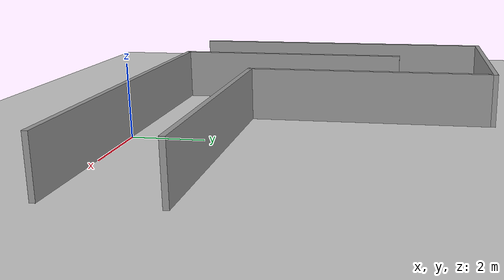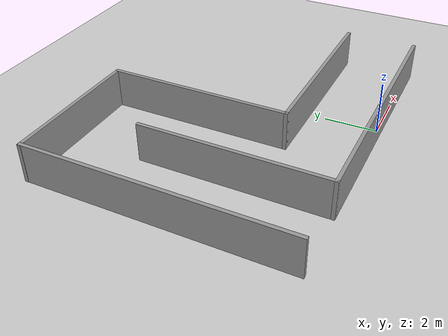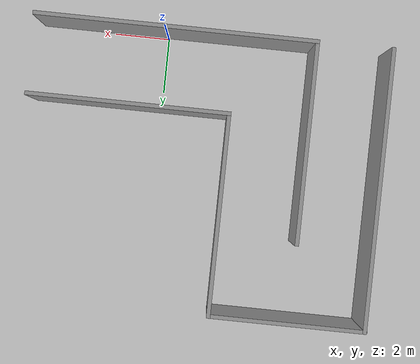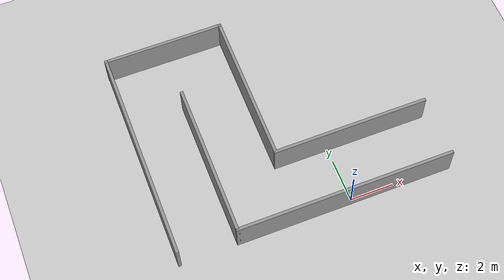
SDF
<sdf version="1.6">
 <world name="default">
  <light name="sun" type="directional">
   <pose>0 0 10 0 -0 0</pose>
   <diffuse>0.8 0.8 0.8 1</diffuse>
   <specular>0.2 0.2 0.2 1</specular>
   <attenuation>
    <range>1000</range>
    <constant>0.9</constant>
    <linear>0.01</linear>
    <quadratic>0.001</quadratic>
   </attenuation>
   <direction>-0.5 0.1 -0.9</direction>
  </light>
  <model name="ground_plane">
   <static>1</static>
   <link name="link">
    <collision name="collision">
     <geometry><plane><normal>0 0 1</normal><size>100 100</size></plane></geometry>
     <surface>
      <contact><collide_bitmask>65535</collide_bitmask></contact>
      <friction><ode><mu>100</mu><mu2>50</mu2></ode></friction>
     </surface>
    </collision>
    <visual name="visual">
     <cast_shadows>0</cast_shadows>
     <geometry><plane><normal>0 0 1</normal><size>100 100</size></plane></geometry>
     <material>
      <script><uri>file://media/materials/scripts/gazebo.material</uri><name>Gazebo/Grey</name></script>
     </material>
    </visual>
   </link>
  </model>
  <gravity>0 0 -9.8</gravity>
  <magnetic_field>6e-06 2.3e-05 -4.2e-05</magnetic_field>
  <atmosphere type="adiabatic"/>
  <physics name="default_physics" default="0" type="ode">
   <max_step_size>0.001</max_step_size>
   <real_time_factor>1</real_time_factor>
   <real_time_update_rate>1000</real_time_update_rate>
  </physics>
  <scene><ambient>0.4 0.4 0.4 1</ambient><background>0.7 0.7 0.7 1</background><shadows>1</shadows></scene>
  <spherical_coordinates>
   <surface_model>EARTH_WGS84</surface_model>
   <latitude_deg>0</latitude_deg>
   <longitude_deg>0</longitude_deg>
   <elevation>0</elevation>
   <heading_deg>0</heading_deg>
  </spherical_coordinates>
  <model name="wall_env">
   <link name="link">
    <inertial>
     <mass>1</mass>
     <inertia>
      <ixx>0.166667</ixx>
      <ixy>0</ixy>
      <ixz>0</ixz>
      <iyy>0.166667</iyy>
      <iyz>0</iyz>
      <izz>0.166667</izz>
     </inertia>
    </inertial>
    <visual name="visual">
     <geometry><box><size>10 0.14 2</size></box></geometry>
     <material>
      <script><name>Gazebo/Grey</name><uri>file://media/materials/scripts/gazebo.material</uri></script>
      <shader type="pixel"><normal_map>__default__</normal_map></shader>
      <ambient>0.3 0.3 0.3 1</ambient>
      <diffuse>0.7 0.7 0.7 1</diffuse>
      <specular>0.01 0.01 0.01 1</specular>
      <emissive>0 0 0 1</emissive>
     </material>
    </visual>
    <collision name="collision">
     <geometry><box><size>10 0.14 2</size></box></geometry>
     <surface>
      <friction>
       <ode><mu>1</mu><mu2>1</mu2><fdir1>0 0 0</fdir1><slip1>0</slip1><slip2>0</slip2></ode>
       <torsional>
        <coefficient>1</coefficient>
        <patch_radius>0</patch_radius>
        <surface_radius>0</surface_radius>
        <use_patch_radius>1</use_patch_radius>
        <ode><slip>0</slip></ode>
       </torsional>
      </friction>
      <bounce><restitution_coefficient>0</restitution_coefficient><threshold>1e+06</threshold></bounce>
      <contact>
       <collide_without_contact>0</collide_without_contact>
       <collide_without_contact_bitmask>1</collide_without_contact_bitmask>
       <collide_bitmask>1</collide_bitmask>
       <ode>
        <soft_cfm>0</soft_cfm>
        <soft_erp>0.2</soft_erp>
        <kp>1e+13</kp>
        <kd>1</kd>
        <max_vel>0.01</max_vel>
        <min_depth>0</min_depth>
       </ode>
       <bullet>
        <split_impulse>1</split_impulse>
        <split_impulse_penetration_threshold>-0.01</split_impulse_penetration_threshold>
        <soft_cfm>0</soft_cfm>
        <soft_erp>0.2</soft_erp>
        <kp>1e+13</kp>
        <kd>1</kd>
       </bullet>
      </contact>
     </surface>
    </collision>
   </link>
   <link name="link_clone">
    <pose>1.4 2.8 0 0 -0 0</pose>
    <inertial>
     <mass>1</mass>
     <inertia>
      <ixx>0.166667</ixx>
      <ixy>0</ixy>
      <ixz>0</ixz>
      <iyy>0.166667</iyy>
      <iyz>0</iyz>
      <izz>0.166667</izz>
     </inertia>
    </inertial>
    <visual name="visual">
     <geometry><box><size>7.2 0.14 2</size></box></geometry>
     <material>
      <script><name>Gazebo/Grey</name><uri>file://media/materials/scripts/gazebo.material</uri></script>
      <shader type="pixel"><normal_map>__default__</normal_map></shader>
      <ambient>0.3 0.3 0.3 1</ambient>
      <diffuse>0.7 0.7 0.7 1</diffuse>
      <specular>0.01 0.01 0.01 1</specular>
      <emissive>0 0 0 1</emissive>
     </material>
    </visual>
    <collision name="collision">
     <geometry><box><size>7.2 0.14 2</size></box></geometry>
     <surface>
      <friction>
       <ode><mu>1</mu><mu2>1</mu2><fdir1>0 0 0</fdir1><slip1>0</slip1><slip2>0</slip2></ode>
       <torsional>
        <coefficient>1</coefficient>
        <patch_radius>0</patch_radius>
        <surface_radius>0</surface_radius>
        <use_patch_radius>1</use_patch_radius>
        <ode><slip>0</slip></ode>
       </torsional>
      </friction>
      <bounce><restitution_coefficient>0</restitution_coefficient><threshold>1e+06</threshold></bounce>
      <contact>
       <collide_without_contact>0</collide_without_contact>
       <collide_without_contact_bitmask>1</collide_without_contact_bitmask>
       <collide_bitmask>1</collide_bitmask>
       <ode>
        <soft_cfm>0</soft_cfm>
        <soft_erp>0.2</soft_erp>
        <kp>1e+13</kp>
        <kd>1</kd>
        <max_vel>0.01</max_vel>
        <min_depth>0</min_depth>
       </ode>
       <bullet>
        <split_impulse>1</split_impulse>
        <split_impulse_penetration_threshold>-0.01</split_impulse_penetration_threshold>
        <soft_cfm>0</soft_cfm>
        <soft_erp>0.2</soft_erp>
        <kp>1e+13</kp>
        <kd>1</kd>
       </bullet>
      </contact>
     </surface>
    </collision>
   </link>
   <link name="link_clone_0">
    <pose>-7.58028 4.93005 0 0 -0 0</pose>
    <inertial>
     <mass>1</mass>
     <inertia>
      <ixx>0.166667</ixx>
      <ixy>0</ixy>
      <ixz>0</ixz>
      <iyy>0.166667</iyy>
      <iyz>0</iyz>
      <izz>0.166667</izz>
     </inertia>
    </inertial>
    <visual name="visual">
     <geometry><box><size>10 0.14 2</size></box></geometry>
     <material>
      <script><name>Gazebo/Grey</name><uri>file://media/materials/scripts/gazebo.material</uri></script>
      <shader type="pixel"><normal_map>__default__</normal_map></shader>
      <ambient>0.3 0.3 0.3 1</ambient>
      <diffuse>0.7 0.7 0.7 1</diffuse>
      <specular>0.01 0.01 0.01 1</specular>
      <emissive>0 0 0 1</emissive>
     </material>
     <pose>0 0 0 0 -0 1.57</pose>
    </visual>
    <collision name="collision">
     <pose>0 0 0 0 -0 1.57</pose>
     <geometry><box><size>10 0.14 2</size></box></geometry>
     <surface>
      <friction>
       <ode><mu>1</mu><mu2>1</mu2><fdir1>0 0 0</fdir1><slip1>0</slip1><slip2>0</slip2></ode>
       <torsional>
        <coefficient>1</coefficient>
        <patch_radius>0</patch_radius>
        <surface_radius>0</surface_radius>
        <use_patch_radius>1</use_patch_radius>
        <ode><slip>0</slip></ode>
       </torsional>
      </friction>
      <bounce><restitution_coefficient>0</restitution_coefficient><threshold>1e+06</threshold></bounce>
      <contact>
       <collide_without_contact>0</collide_without_contact>
       <collide_without_contact_bitmask>1</collide_without_contact_bitmask>
       <collide_bitmask>1</collide_bitmask>
       <ode>
        <soft_cfm>0</soft_cfm>
        <soft_erp>0.2</soft_erp>
        <kp>1e+13</kp>
        <kd>1</kd>
        <max_vel>0.01</max_vel>
        <min_depth>0</min_depth>
       </ode>
       <bullet>
        <split_impulse>1</split_impulse>
        <split_impulse_penetration_threshold>-0.01</split_impulse_penetration_threshold>
        <soft_cfm>0</soft_cfm>
        <soft_erp>0.2</soft_erp>
        <kp>1e+13</kp>
        <kd>1</kd>
       </bullet>
      </contact>
     </surface>
    </collision>
   </link>
   <link name="link_clone_clone">
    <pose>-2.12713 6.33005 0 0 -0 0</pose>
    <inertial>
     <mass>1</mass>
     <inertia>
      <ixx>0.166667</ixx>
      <ixy>0</ixy>
      <ixz>0</ixz>
      <iyy>0.166667</iyy>
      <iyz>0</iyz>
      <izz>0.166667</izz>
     </inertia>
    </inertial>
    <visual name="visual">
     <geometry><box><size>7.2 0.14 2</size></box></geometry>
     <material>
      <script><name>Gazebo/Grey</name><uri>file://media/materials/scripts/gazebo.material</uri></script>
      <shader type="pixel"><normal_map>__default__</normal_map></shader>
      <ambient>0.3 0.3 0.3 1</ambient>
      <diffuse>0.7 0.7 0.7 1</diffuse>
      <specular>0.01 0.01 0.01 1</specular>
      <emissive>0 0 0 1</emissive>
     </material>
     <pose>0 0 0 0 -0 1.57</pose>
    </visual>
    <collision name="collision">
     <pose>0 0 0 0 -0 1.57</pose>
     <geometry><box><size>7.2 0.14 2</size></box></geometry>
     <surface>
      <friction>
       <ode><mu>1</mu><mu2>1</mu2><fdir1>0 0 0</fdir1><slip1>0</slip1><slip2>0</slip2></ode>
       <torsional>
        <coefficient>1</coefficient>
        <patch_radius>0</patch_radius>
        <surface_radius>0</surface_radius>
        <use_patch_radius>1</use_patch_radius>
        <ode><slip>0</slip></ode>
       </torsional>
      </friction>
      <bounce><restitution_coefficient>0</restitution_coefficient><threshold>1e+06</threshold></bounce>
      <contact>
       <collide_without_contact>0</collide_without_contact>
       <collide_without_contact_bitmask>1</collide_without_contact_bitmask>
       <collide_bitmask>1</collide_bitmask>
       <ode>
        <soft_cfm>0</soft_cfm>
        <soft_erp>0.2</soft_erp>
        <kp>1e+13</kp>
        <kd>1</kd>
        <max_vel>0.01</max_vel>
        <min_depth>0</min_depth>
       </ode>
       <bullet>
        <split_impulse>1</split_impulse>
        <split_impulse_penetration_threshold>-0.01</split_impulse_penetration_threshold>
        <soft_cfm>0</soft_cfm>
        <soft_erp>0.2</soft_erp>
        <kp>1e+13</kp>
        <kd>1</kd>
       </bullet>
      </contact>
     </surface>
    </collision>
   </link>
   <link name="link_clone_clone_0">
    <pose>-4.85426 9.86011 0 0 -0 0</pose>
    <inertial>
     <mass>1</mass>
     <inertia>
      <ixx>0.166667</ixx>
      <ixy>0</ixy>
      <ixz>0</ixz>
      <iyy>0.166667</iyy>
      <iyz>0</iyz>
      <izz>0.166667</izz>
     </inertia>
    </inertial>
    <visual name="visual">
     <geometry><box><size>5.6 0.14 2</size></box></geometry>
     <material>
      <script><name>Gazebo/Grey</name><uri>file://media/materials/scripts/gazebo.material</uri></script>
      <shader type="pixel"><normal_map>__default__</normal_map></shader>
      <ambient>0.3 0.3 0.3 1</ambient>
      <diffuse>0.7 0.7 0.7 1</diffuse>
      <specular>0.01 0.01 0.01 1</specular>
      <emissive>0 0 0 1</emissive>
     </material>
    </visual>
    <collision name="collision">
     <geometry><box><size>5.6 0.14 2</size></box></geometry>
     <surface>
      <friction>
       <ode><mu>1</mu><mu2>1</mu2><fdir1>0 0 0</fdir1><slip1>0</slip1><slip2>0</slip2></ode>
       <torsional>
        <coefficient>1</coefficient>
        <patch_radius>0</patch_radius>
        <surface_radius>0</surface_radius>
        <use_patch_radius>1</use_patch_radius>
        <ode><slip>0</slip></ode>
       </torsional>
      </friction>
      <bounce><restitution_coefficient>0</restitution_coefficient><threshold>1e+06</threshold></bounce>
      <contact>
       <collide_without_contact>0</collide_without_contact>
       <collide_without_contact_bitmask>1</collide_without_contact_bitmask>
       <collide_bitmask>1</collide_bitmask>
       <ode>
        <soft_cfm>0</soft_cfm>
        <soft_erp>0.2</soft_erp>
        <kp>1e+13</kp>
        <kd>1</kd>
        <max_vel>0.01</max_vel>
        <min_depth>0</min_depth>
       </ode>
       <bullet>
        <split_impulse>1</split_impulse>
        <split_impulse_penetration_threshold>-0.01</split_impulse_penetration_threshold>
        <soft_cfm>0</soft_cfm>
        <soft_erp>0.2</soft_erp>
        <kp>1e+13</kp>
        <kd>1</kd>
       </bullet>
      </contact>
     </surface>
    </collision>
   </link>
   <link name="link_clone_clone_clone">
    <pose>-4.92713 3.53005 0 0 -0 0</pose>
    <inertial>
     <mass>1</mass>
     <inertia>
      <ixx>0.166667</ixx>
      <ixy>0</ixy>
      <ixz>0</ixz>
      <iyy>0.166667</iyy>
      <iyz>0</iyz>
      <izz>0.166667</izz>
     </inertia>
    </inertial>
    <visual name="visual">
     <geometry><box><size>7.2 0.14 2</size></box></geometry>
     <material>
      <script><name>Gazebo/Grey</name><uri>file://media/materials/scripts/gazebo.material</uri></script>
      <shader type="pixel"><normal_map>__default__</normal_map></shader>
      <ambient>0.3 0.3 0.3 1</ambient>
      <diffuse>0.7 0.7 0.7 1</diffuse>
      <specular>0.01 0.01 0.01 1</specular>
      <emissive>0 0 0 1</emissive>
     </material>
     <pose>0 0 0 0 -0 1.57</pose>
    </visual>
    <collision name="collision">
     <pose>0 0 0 0 -0 1.57</pose>
     <geometry><box><size>7.2 0.14 2</size></box></geometry>
     <surface>
      <friction>
       <ode><mu>1</mu><mu2>1</mu2><fdir1>0 0 0</fdir1><slip1>0</slip1><slip2>0</slip2></ode>
       <torsional>
        <coefficient>1</coefficient>
        <patch_radius>0</patch_radius>
        <surface_radius>0</surface_radius>
        <use_patch_radius>1</use_patch_radius>
        <ode><slip>0</slip></ode>
       </torsional>
      </friction>
      <bounce><restitution_coefficient>0</restitution_coefficient><threshold>1e+06</threshold></bounce>
      <contact>
       <collide_without_contact>0</collide_without_contact>
       <collide_without_contact_bitmask>1</collide_without_contact_bitmask>
       <collide_bitmask>1</collide_bitmask>
       <ode>
        <soft_cfm>0</soft_cfm>
        <soft_erp>0.2</soft_erp>
        <kp>1e+13</kp>
        <kd>1</kd>
        <max_vel>0.01</max_vel>
        <min_depth>0</min_depth>
       </ode>
       <bullet>
        <split_impulse>1</split_impulse>
        <split_impulse_penetration_threshold>-0.01</split_impulse_penetration_threshold>
        <soft_cfm>0</soft_cfm>
        <soft_erp>0.2</soft_erp>
        <kp>1e+13</kp>
        <kd>1</kd>
       </bullet>
      </contact>
     </surface>
    </collision>
   </link>
   <joint name="link_JOINT_0" type="fixed">
    <parent>link</parent>
    <child>link_clone_clone_clone</child>
    <pose>0 -3.55 0 0 -0 0</pose>
    <physics>
     <ode><limit><cfm>0</cfm><erp>0.2</erp></limit><suspension><cfm>0</cfm><erp>0.2</erp></suspension></ode>
    </physics>
   </joint>
   <joint name="link_clone_0_JOINT_3" type="fixed">
    <parent>link_clone_0</parent>
    <child>link_clone_clone_0</child>
    <pose>-2.75 0 0 0 -0 0</pose>
    <physics>
     <ode><limit><cfm>0</cfm><erp>0.2</erp></limit><suspension><cfm>0</cfm><erp>0.2</erp></suspension></ode>
    </physics>
   </joint>
   <joint name="link_clone_JOINT_1" type="fixed">
    <parent>link_clone</parent>
    <child>link_clone_clone</child>
    <pose>0 -3.55 0 0 -0 0</pose>
    <physics>
     <ode><limit><cfm>0</cfm><erp>0.2</erp></limit><suspension><cfm>0</cfm><erp>0.2</erp></suspension></ode>
    </physics>
   </joint>
   <joint name="link_clone_clone_JOINT_2" type="fixed">
    <parent>link_clone_clone</parent>
    <child>link_clone_clone_0</child>
    <pose>2.75 0 0 0 -0 0</pose>
    <physics>
     <ode><limit><cfm>0</cfm><erp>0.2</erp></limit><suspension><cfm>0</cfm><erp>0.2</erp></suspension></ode>
    </physics>
   </joint>
   <static>1</static>
   <pose>-0.338955 -0.11156 0.5 0 -0 0</pose>
  </model>
 </world>
</sdf>
